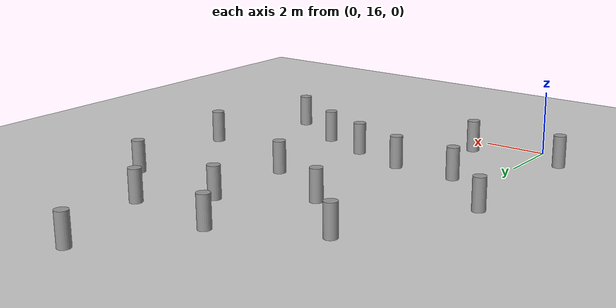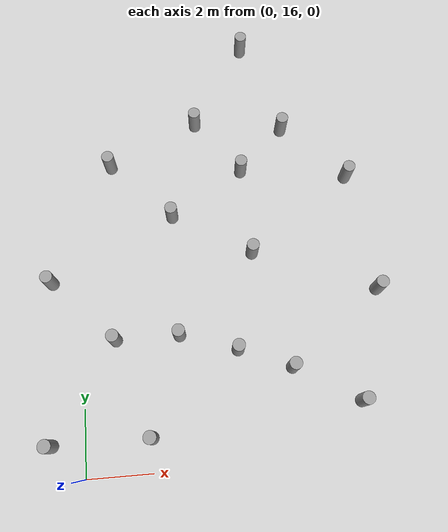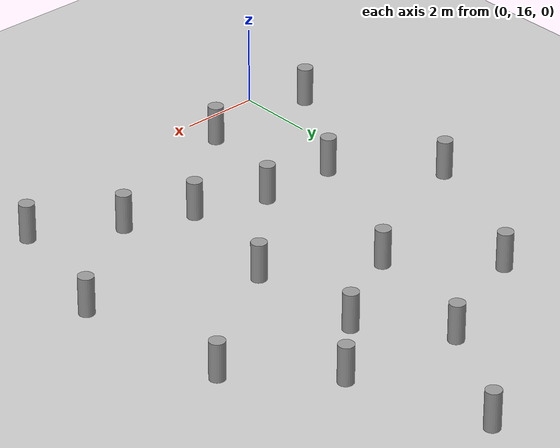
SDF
<sdf version="1.7">
 <world name="default">
  <model name="ground_plane">
   <static>1</static>
   <link name="link">
    <collision name="collision">
     <geometry><plane><normal>0 0 1</normal><size>100 100</size></plane></geometry>
     <surface><friction><ode><mu>100</mu><mu2>50</mu2></ode></friction></surface>
    </collision>
    <visual name="visual">
     <cast_shadows>0</cast_shadows>
     <geometry><plane><normal>0 0 1</normal><size>100 100</size></plane></geometry>
     <material>
      <script><uri>file://media/materials/scripts/gazebo.material</uri><name>Gazebo/Grey</name></script>
     </material>
    </visual>
   </link>
  </model>
  <model name="unit_cylinder_clone_9">
   <pose>6.42971 18.7387 0.499997 0 -0 4e-06</pose>
   <link name="link">
    <inertial>
     <mass>1</mass>
     <inertia><ixx>0.145833</ixx><ixy>0</ixy><ixz>0</ixz><iyy>0.145833</iyy><iyz>0</iyz><izz>0.125</izz></inertia>
    </inertial>
    <collision name="collision">
     <geometry><cylinder><radius>0.19793</radius><length>1</length></cylinder></geometry>
    </collision>
    <visual name="visual">
     <geometry><cylinder><radius>0.19793</radius><length>1</length></cylinder></geometry>
     <material>
      <script><name>Gazebo/Grey</name><uri>file://media/materials/scripts/gazebo.material</uri></script>
     </material>
    </visual>
   </link>
  </model>
  <model name="unit_cylinder_clone_10">
   <pose>1 20 0.499993 0 -0 3e-06</pose>
   <link name="link">
    <inertial>
     <mass>1</mass>
     <inertia><ixx>0.145833</ixx><ixy>0</ixy><ixz>0</ixz><iyy>0.145833</iyy><iyz>0</iyz><izz>0.125</izz></inertia>
    </inertial>
    <collision name="collision">
     <geometry><cylinder><radius>0.19793</radius><length>1</length></cylinder></geometry>
    </collision>
    <visual name="visual">
     <geometry><cylinder><radius>0.19793</radius><length>1</length></cylinder></geometry>
     <material>
      <script><name>Gazebo/Grey</name><uri>file://media/materials/scripts/gazebo.material</uri></script>
     </material>
    </visual>
   </link>
  </model>
  <model name="unit_cylinder_clone_11">
   <pose>3 20 0.499993 0 -0 3e-06</pose>
   <link name="link">
    <inertial>
     <mass>1</mass>
     <inertia><ixx>0.145833</ixx><ixy>0</ixy><ixz>0</ixz><iyy>0.145833</iyy><iyz>0</iyz><izz>0.125</izz></inertia>
    </inertial>
    <collision name="collision">
     <geometry><cylinder><radius>0.19793</radius><length>1</length></cylinder></geometry>
    </collision>
    <visual name="visual">
     <geometry><cylinder><radius>0.19793</radius><length>1</length></cylinder></geometry>
     <material>
      <script><name>Gazebo/Grey</name><uri>file://media/materials/scripts/gazebo.material</uri></script>
     </material>
    </visual>
   </link>
  </model>
  <model name="unit_cylinder_clone_12">
   <pose>5.5409 22.5279 0.499993 0 -0 3e-06</pose>
   <link name="link">
    <inertial>
     <mass>1</mass>
     <inertia><ixx>0.145833</ixx><ixy>0</ixy><ixz>0</ixz><iyy>0.145833</iyy><iyz>0</iyz><izz>0.125</izz></inertia>
    </inertial>
    <collision name="collision">
     <geometry><cylinder><radius>0.19793</radius><length>1</length></cylinder></geometry>
    </collision>
    <visual name="visual">
     <geometry><cylinder><radius>0.19793</radius><length>1</length></cylinder></geometry>
     <material>
      <script><name>Gazebo/Grey</name><uri>file://media/materials/scripts/gazebo.material</uri></script>
     </material>
    </visual>
   </link>
  </model>
  <model name="unit_cylinder_clone_13">
   <pose>2 17 0.499993 0 -0 3e-06</pose>
   <link name="link">
    <inertial>
     <mass>1</mass>
     <inertia><ixx>0.145833</ixx><ixy>0</ixy><ixz>0</ixz><iyy>0.145833</iyy><iyz>0</iyz><izz>0.125</izz></inertia>
    </inertial>
    <collision name="collision">
     <geometry><cylinder><radius>0.19793</radius><length>1</length></cylinder></geometry>
    </collision>
    <visual name="visual">
     <geometry><cylinder><radius>0.19793</radius><length>1</length></cylinder></geometry>
     <material>
      <script><name>Gazebo/Grey</name><uri>file://media/materials/scripts/gazebo.material</uri></script>
     </material>
    </visual>
   </link>
  </model>
  <model name="unit_cylinder_clone_14">
   <pose>-1 17 0.499997 0 -0 3e-06</pose>
   <link name="link">
    <inertial>
     <mass>1</mass>
     <inertia><ixx>0.145833</ixx><ixy>0</ixy><ixz>0</ixz><iyy>0.145833</iyy><iyz>0</iyz><izz>0.125</izz></inertia>
    </inertial>
    <collision name="collision">
     <geometry><cylinder><radius>0.19793</radius><length>1</length></cylinder></geometry>
    </collision>
    <visual name="visual">
     <geometry><cylinder><radius>0.19793</radius><length>1</length></cylinder></geometry>
     <material>
      <script><name>Gazebo/Grey</name><uri>file://media/materials/scripts/gazebo.material</uri></script>
     </material>
    </visual>
   </link>
  </model>
  <model name="unit_cylinder_clone_15">
   <pose>-1 22 0.499997 0 -0 3e-06</pose>
   <link name="link">
    <inertial>
     <mass>1</mass>
     <inertia><ixx>0.145833</ixx><ixy>0</ixy><ixz>0</ixz><iyy>0.145833</iyy><iyz>0</iyz><izz>0.125</izz></inertia>
    </inertial>
    <collision name="collision">
     <geometry><cylinder><radius>0.19793</radius><length>1</length></cylinder></geometry>
    </collision>
    <visual name="visual">
     <geometry><cylinder><radius>0.19793</radius><length>1</length></cylinder></geometry>
     <material>
      <script><name>Gazebo/Grey</name><uri>file://media/materials/scripts/gazebo.material</uri></script>
     </material>
    </visual>
   </link>
  </model>
  <model name="unit_cylinder_clone_16">
   <pose>1 26 0.499997 0 -0 3e-06</pose>
   <link name="link">
    <inertial>
     <mass>1</mass>
     <inertia><ixx>0.145833</ixx><ixy>0</ixy><ixz>0</ixz><iyy>0.145833</iyy><iyz>0</iyz><izz>0.125</izz></inertia>
    </inertial>
    <collision name="collision">
     <geometry><cylinder><radius>0.19793</radius><length>1</length></cylinder></geometry>
    </collision>
    <visual name="visual">
     <geometry><cylinder><radius>0.19793</radius><length>1</length></cylinder></geometry>
     <material>
      <script><name>Gazebo/Grey</name><uri>file://media/materials/scripts/gazebo.material</uri></script>
     </material>
    </visual>
   </link>
  </model>
  <model name="unit_cylinder_clone_17">
   <pose>4 27.4252 0.499997 0 -0 3e-06</pose>
   <link name="link">
    <inertial>
     <mass>1</mass>
     <inertia><ixx>0.145833</ixx><ixy>0</ixy><ixz>0</ixz><iyy>0.145833</iyy><iyz>0</iyz><izz>0.125</izz></inertia>
    </inertial>
    <collision name="collision">
     <geometry><cylinder><radius>0.19793</radius><length>1</length></cylinder></geometry>
    </collision>
    <visual name="visual">
     <geometry><cylinder><radius>0.19793</radius><length>1</length></cylinder></geometry>
     <material>
      <script><name>Gazebo/Grey</name><uri>file://media/materials/scripts/gazebo.material</uri></script>
     </material>
    </visual>
   </link>
  </model>
  <model name="unit_cylinder_clone_18">
   <pose>7 27 0.499993 0 -0 3e-06</pose>
   <link name="link">
    <inertial>
     <mass>1</mass>
     <inertia><ixx>0.145833</ixx><ixy>0</ixy><ixz>0</ixz><iyy>0.145833</iyy><iyz>0</iyz><izz>0.125</izz></inertia>
    </inertial>
    <collision name="collision">
     <geometry><cylinder><radius>0.19793</radius><length>1</length></cylinder></geometry>
    </collision>
    <visual name="visual">
     <geometry><cylinder><radius>0.19793</radius><length>1</length></cylinder></geometry>
     <material>
      <script><name>Gazebo/Grey</name><uri>file://media/materials/scripts/gazebo.material</uri></script>
     </material>
    </visual>
   </link>
  </model>
  <model name="unit_cylinder_clone_19">
   <pose>9 25 0.499997 0 -0 3e-06</pose>
   <link name="link">
    <inertial>
     <mass>1</mass>
     <inertia><ixx>0.145833</ixx><ixy>0</ixy><ixz>0</ixz><iyy>0.145833</iyy><iyz>0</iyz><izz>0.125</izz></inertia>
    </inertial>
    <collision name="collision">
     <geometry><cylinder><radius>0.19793</radius><length>1</length></cylinder></geometry>
    </collision>
    <visual name="visual">
     <geometry><cylinder><radius>0.19793</radius><length>1</length></cylinder></geometry>
     <material>
      <script><name>Gazebo/Grey</name><uri>file://media/materials/scripts/gazebo.material</uri></script>
     </material>
    </visual>
   </link>
  </model>
  <model name="unit_cylinder_clone_20">
   <pose>9.43338 21 0.499997 0 -0 3e-06</pose>
   <link name="link">
    <inertial>
     <mass>1</mass>
     <inertia><ixx>0.145833</ixx><ixy>0</ixy><ixz>0</ixz><iyy>0.145833</iyy><iyz>0</iyz><izz>0.125</izz></inertia>
    </inertial>
    <collision name="collision">
     <geometry><cylinder><radius>0.19793</radius><length>1</length></cylinder></geometry>
    </collision>
    <visual name="visual">
     <geometry><cylinder><radius>0.19793</radius><length>1</length></cylinder></geometry>
     <material>
      <script><name>Gazebo/Grey</name><uri>file://media/materials/scripts/gazebo.material</uri></script>
     </material>
    </visual>
   </link>
  </model>
  <model name="unit_cylinder_clone_21">
   <pose>8.41458 17.5736 0.499997 0 -0 3e-06</pose>
   <link name="link">
    <inertial>
     <mass>1</mass>
     <inertia><ixx>0.145833</ixx><ixy>0</ixy><ixz>0</ixz><iyy>0.145833</iyy><iyz>0</iyz><izz>0.125</izz></inertia>
    </inertial>
    <collision name="collision">
     <geometry><cylinder><radius>0.19793</radius><length>1</length></cylinder></geometry>
    </collision>
    <visual name="visual">
     <geometry><cylinder><radius>0.19793</radius><length>1</length></cylinder></geometry>
     <material>
      <script><name>Gazebo/Grey</name><uri>file://media/materials/scripts/gazebo.material</uri></script>
     </material>
    </visual>
   </link>
  </model>
  <model name="unit_cylinder_clone_22">
   <pose>3 24 0.499993 0 -0 3e-06</pose>
   <link name="link">
    <inertial>
     <mass>1</mass>
     <inertia><ixx>0.145833</ixx><ixy>0</ixy><ixz>0</ixz><iyy>0.145833</iyy><iyz>0</iyz><izz>0.125</izz></inertia>
    </inertial>
    <collision name="collision">
     <geometry><cylinder><radius>0.19793</radius><length>1</length></cylinder></geometry>
    </collision>
    <visual name="visual">
     <geometry><cylinder><radius>0.19793</radius><length>1</length></cylinder></geometry>
     <material>
      <script><name>Gazebo/Grey</name><uri>file://media/materials/scripts/gazebo.material</uri></script>
     </material>
    </visual>
   </link>
  </model>
  <model name="unit_cylinder_clone_clone_0">
   <pose>4.79174 19.4083 0.499997 0 -0 1e-06</pose>
   <link name="link">
    <inertial>
     <mass>1</mass>
     <inertia><ixx>0.145833</ixx><ixy>0</ixy><ixz>0</ixz><iyy>0.145833</iyy><iyz>0</iyz><izz>0.125</izz></inertia>
    </inertial>
    <collision name="collision">
     <geometry><cylinder><radius>0.19793</radius><length>1</length></cylinder></geometry>
    </collision>
    <visual name="visual">
     <geometry><cylinder><radius>0.19793</radius><length>1</length></cylinder></geometry>
     <material>
      <script><name>Gazebo/Grey</name><uri>file://media/materials/scripts/gazebo.material</uri></script>
     </material>
    </visual>
   </link>
  </model>
  <model name="unit_cylinder_clone_clone_1">
   <pose>5.88802 30.4158 0.499993 0 -0 1e-06</pose>
   <link name="link">
    <inertial>
     <mass>1</mass>
     <inertia><ixx>0.145833</ixx><ixy>0</ixy><ixz>0</ixz><iyy>0.145833</iyy><iyz>0</iyz><izz>0.125</izz></inertia>
    </inertial>
    <collision name="collision">
     <geometry><cylinder><radius>0.19793</radius><length>1</length></cylinder></geometry>
    </collision>
    <visual name="visual">
     <geometry><cylinder><radius>0.19793</radius><length>1</length></cylinder></geometry>
     <material>
      <script><name>Gazebo/Grey</name><uri>file://media/materials/scripts/gazebo.material</uri></script>
     </material>
    </visual>
   </link>
  </model>
  <model name="unit_cylinder_clone_clone_2">
   <pose>5.44269 25.5025 0.499997 0 -0 1e-06</pose>
   <link name="link">
    <inertial>
     <mass>1</mass>
     <inertia><ixx>0.145833</ixx><ixy>0</ixy><ixz>0</ixz><iyy>0.145833</iyy><iyz>0</iyz><izz>0.125</izz></inertia>
    </inertial>
    <collision name="collision">
     <geometry><cylinder><radius>0.19793</radius><length>1</length></cylinder></geometry>
    </collision>
    <visual name="visual">
     <geometry><cylinder><radius>0.19793</radius><length>1</length></cylinder></geometry>
     <material>
      <script><name>Gazebo/Grey</name><uri>file://media/materials/scripts/gazebo.material</uri></script>
     </material>
    </visual>
   </link>
  </model>
 </world>
</sdf>
